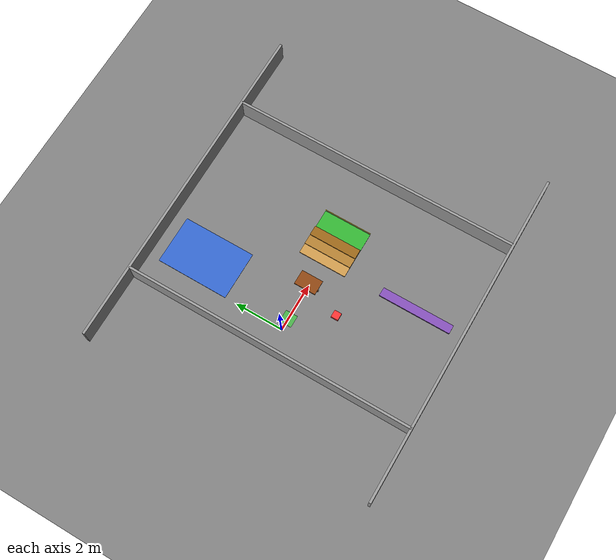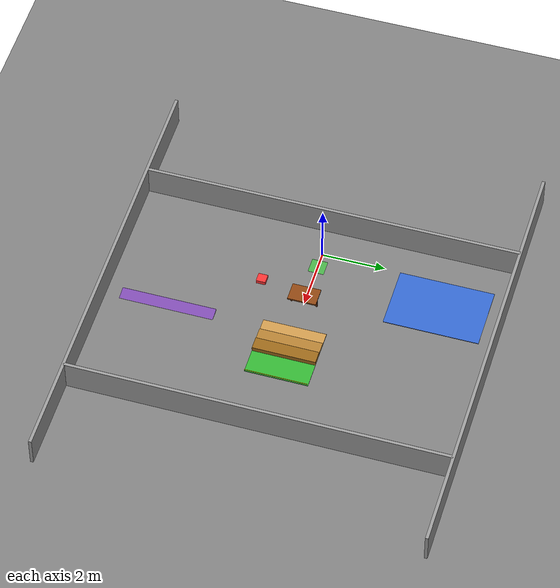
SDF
<?xml version="1.0"?>
<sdf version="1.6">
  <world name="test_dropoff">

    <!-- ══ PHYSICS ══════════════════════════════════════════════════ -->
    <physics type="ode">
      <real_time_update_rate>1000.0</real_time_update_rate>
      <max_step_size>0.001</max_step_size>
      <real_time_factor>1</real_time_factor>
    </physics>

    <!-- ══ LIGHTING ══════════════════════════════════════════════════ -->
    <light name="sun" type="directional">
      <cast_shadows>true</cast_shadows>
      <pose>0 0 10 0 0 0</pose>
      <diffuse>0.8 0.8 0.8 1</diffuse>
      <specular>0.2 0.2 0.2 1</specular>
      <direction>-0.5 0.1 -0.9</direction>
    </light>

    <!-- ══ 1. SÀN CHÍNH ══════════════════════════════════════════════ -->
    <model name="ground_plane">
      <static>true</static>
      <link name="link">
        <collision name="collision">
          <geometry>
            <plane>
              <normal>0 0 1</normal>
              <size>20 20</size>
            </plane>
          </geometry>
          <surface>
            <friction>
              <ode><mu>1.0</mu><mu2>1.0</mu2></ode>
            </friction>
          </surface>
        </collision>
        <visual name="visual">
          <cast_shadows>false</cast_shadows>
          <geometry>
            <plane>
              <normal>0 0 1</normal>
              <size>20 20</size>
            </plane>
          </geometry>
          <material>
            <ambient>0.5 0.5 0.5 1</ambient>
            <diffuse>0.5 0.5 0.5 1</diffuse>
          </material>
        </visual>
      </link>
    </model>

    <!-- ══ 2. TƯỜNG BAO ══════════════════════════════════════════════ -->
    <model name="wall_north">
      <static>true</static>
      <pose>3 6 0.5 0 0 0</pose>
      <link name="link">
        <collision name="collision">
          <geometry><box><size>14 0.1 1.0</size></box></geometry>
        </collision>
        <visual name="visual">
          <geometry><box><size>14 0.1 1.0</size></box></geometry>
          <material><ambient>0.6 0.6 0.6 1</ambient></material>
        </visual>
      </link>
    </model>

    <model name="wall_south">
      <static>true</static>
      <pose>3 -6 0.5 0 0 0</pose>
      <link name="link">
        <collision name="collision">
          <geometry><box><size>14 0.1 1.0</size></box></geometry>
        </collision>
        <visual name="visual">
          <geometry><box><size>14 0.1 1.0</size></box></geometry>
          <material><ambient>0.6 0.6 0.6 1</ambient></material>
        </visual>
      </link>
    </model>

    <model name="wall_west">
      <static>true</static>
      <pose>-1 0 0.5 0 0 0</pose>
      <link name="link">
        <collision name="collision">
          <geometry><box><size>0.1 12 1.0</size></box></geometry>
        </collision>
        <visual name="visual">
          <geometry><box><size>0.1 12 1.0</size></box></geometry>
          <material><ambient>0.6 0.6 0.6 1</ambient></material>
        </visual>
      </link>
    </model>

    <model name="wall_east">
      <static>true</static>
      <pose>7 0 0.5 0 0 0</pose>
      <link name="link">
        <collision name="collision">
          <geometry><box><size>0.1 12 1.0</size></box></geometry>
        </collision>
        <visual name="visual">
          <geometry><box><size>0.1 12 1.0</size></box></geometry>
          <material><ambient>0.6 0.6 0.6 1</ambient></material>
        </visual>
      </link>
    </model>

    <model name="stair_1">
      <static>true</static>
      <pose>3.2 0 0.025 0 0 0</pose>
      <link name="link">
        <collision name="collision">
          <geometry><box><size>0.40 2.0 0.05</size></box></geometry>
        </collision>
        <visual name="visual">
          <geometry><box><size>0.40 2.0 0.05</size></box></geometry>
          <material>
            <ambient>0.8 0.6 0.3 1</ambient>
            <diffuse>0.8 0.6 0.3 1</diffuse>
          </material>
        </visual>
      </link>
    </model>

    <model name="stair_2">
      <static>true</static>
      <pose>3.6 0 0.05 0 0 0</pose>
      <link name="link">
        <collision name="collision">
          <geometry><box><size>0.40 2.0 0.10</size></box></geometry>
        </collision>
        <visual name="visual">
          <geometry><box><size>0.40 2.0 0.10</size></box></geometry>
          <material>
            <ambient>0.7 0.5 0.2 1</ambient>
            <diffuse>0.7 0.5 0.2 1</diffuse>
          </material>
        </visual>
      </link>
    </model>

    <model name="stair_3">
      <static>true</static>
      <pose>4.0 0 0.075 0 0 0</pose>
      <link name="link">
        <collision name="collision">
          <geometry><box><size>0.40 2.0 0.15</size></box></geometry>
        </collision>
        <visual name="visual">
          <geometry><box><size>0.40 2.0 0.15</size></box></geometry>
          <material>
            <ambient>0.6 0.4 0.1 1</ambient>
            <diffuse>0.6 0.4 0.1 1</diffuse>
          </material>
        </visual>
      </link>
    </model>

    <model name="raised_floor">
      <static>true</static>
      <pose>4.6 0 -0.075 0 0 0</pose>
      <link name="link">
        <collision name="collision">
          <geometry><box><size>0.8 2.0 0.15</size></box></geometry>
          <surface>
            <friction><ode><mu>1.0</mu><mu2>1.0</mu2></ode></friction>
          </surface>
        </collision>
        <visual name="visual">
          <geometry><box><size>0.8 2.0 0.15</size></box></geometry>
          <material>
            <ambient>0.2 0.7 0.2 1</ambient>
            <diffuse>0.2 0.7 0.2 1</diffuse>
          </material>
        </visual>
      </link>
    </model>

    <!-- Vạch vàng đánh dấu mép drop-off -->
    <model name="dropoff_marker">
      <static>true</static>
      <pose>5.01 0 0.077 0 0 0</pose>
      <link name="link">
        <collision name="collision">
          <geometry><box><size>0.02 2.0 0.004</size></box></geometry>
        </collision>
        <visual name="visual">
          <geometry><box><size>0.02 2.0 0.004</size></box></geometry>
          <material>
            <ambient>1.0 0.9 0.0 1</ambient>
            <diffuse>1.0 0.9 0.0 1</diffuse>
          </material>
        </visual>
      </link>
    </model>

    <model name="platform_high">
      <static>true</static>
      <pose>1.0 4.0 -0.10 0 0 0</pose>
      <link name="link">
        <collision name="collision">
          <geometry><box><size>2.0 3.0 0.20</size></box></geometry>
          <surface>
            <friction><ode><mu>1.0</mu><mu2>1.0</mu2></ode></friction>
          </surface>
        </collision>
        <visual name="visual">
          <geometry><box><size>2.0 3.0 0.20</size></box></geometry>
          <material>
            <ambient>0.2 0.4 0.8 1</ambient>
            <diffuse>0.2 0.4 0.8 1</diffuse>
          </material>
        </visual>
      </link>
    </model>

    <model name="platform_low">
      <static>true</static>
      <pose>1.0 -4.0 -0.15 0 0 0</pose>
      <link name="link">
        <collision name="collision">
          <geometry><box><size>2.0 3.0 0.10</size></box></geometry>
          <surface>
            <friction><ode><mu>1.0</mu><mu2>1.0</mu2></ode></friction>
          </surface>
        </collision>
        <visual name="visual">
          <geometry><box><size>2.0 3.0 0.10</size></box></geometry>
          <material>
            <ambient>0.8 0.3 0.2 1</ambient>
            <diffuse>0.8 0.3 0.2 1</diffuse>
          </material>
        </visual>
      </link>
    </model>

    <model name="ramp">
      <static>true</static>
      <pose>4.0 -4.0 -0.15 0 0.1745 0</pose>
      <link name="link">
        <collision name="collision">
          <geometry><box><size>2.0 3.0 0.05</size></box></geometry>
          <surface>
            <friction><ode><mu>0.9</mu><mu2>0.9</mu2></ode></friction>
          </surface>
        </collision>
        <visual name="visual">
          <geometry><box><size>2.0 3.0 0.05</size></box></geometry>
          <material>
            <ambient>0.5 0.3 0.7 1</ambient>
            <diffuse>0.5 0.3 0.7 1</diffuse>
          </material>
        </visual>
      </link>
    </model>

    <model name="table_leg_left">
      <static>true</static>
      <pose>2.0 0.4 0.20 0 0 0</pose>
      <link name="link">
        <collision name="collision">
          <geometry><box><size>0.05 0.05 0.40</size></box></geometry>
        </collision>
        <visual name="visual">
          <geometry><box><size>0.05 0.05 0.40</size></box></geometry>
          <material>
            <ambient>0.4 0.2 0.1 1</ambient>
            <diffuse>0.4 0.2 0.1 1</diffuse>
          </material>
        </visual>
      </link>
    </model>

    <model name="table_leg_right">
      <static>true</static>
      <pose>2.0 -0.4 0.20 0 0 0</pose>
      <link name="link">
        <collision name="collision">
          <geometry><box><size>0.05 0.05 0.40</size></box></geometry>
        </collision>
        <visual name="visual">
          <geometry><box><size>0.05 0.05 0.40</size></box></geometry>
          <material>
            <ambient>0.4 0.2 0.1 1</ambient>
            <diffuse>0.4 0.2 0.1 1</diffuse>
          </material>
        </visual>
      </link>
    </model>

    <model name="table_top">
      <static>true</static>
      <pose>2.0 0 0.425 0 0 0</pose>
      <link name="link">
        <collision name="collision">
          <geometry><box><size>0.60 0.90 0.05</size></box></geometry>
        </collision>
        <visual name="visual">
          <geometry><box><size>0.60 0.90 0.05</size></box></geometry>
          <material>
            <ambient>0.55 0.27 0.07 1</ambient>
            <diffuse>0.55 0.27 0.07 1</diffuse>
          </material>
        </visual>
      </link>
    </model>

    <model name="low_obstacle">
      <static>true</static>
      <pose>1.5 -1.5 0.06 0 0 0</pose>
      <link name="link">
        <collision name="collision">
          <geometry><box><size>0.30 0.30 0.12</size></box></geometry>
        </collision>
        <visual name="visual">
          <geometry><box><size>0.30 0.30 0.12</size></box></geometry>
          <material>
            <ambient>1.0 0.2 0.2 1</ambient>
            <diffuse>1.0 0.2 0.2 1</diffuse>
          </material>
        </visual>
      </link>
    </model>

    <!-- ══ 10. MARKER ĐIỂM XUẤT PHÁT (xanh lá mờ) ═══════════════════
         Robot spawn tại x=0.5, y=0
    ═════════════════════════════════════════════════════════════════ -->
    <model name="start_marker">
      <static>true</static>
      <pose>0.5 0 0.001 0 0 0</pose>
      <link name="link">
        <collision name="collision">
          <geometry><box><size>0.50 0.50 0.001</size></box></geometry>
        </collision>
        <visual name="visual">
          <geometry><box><size>0.50 0.50 0.002</size></box></geometry>
          <material>
            <ambient>0.0 1.0 0.0 0.4</ambient>
            <diffuse>0.0 1.0 0.0 0.4</diffuse>
          </material>
        </visual>
      </link>
    </model>

  </world>
</sdf>
